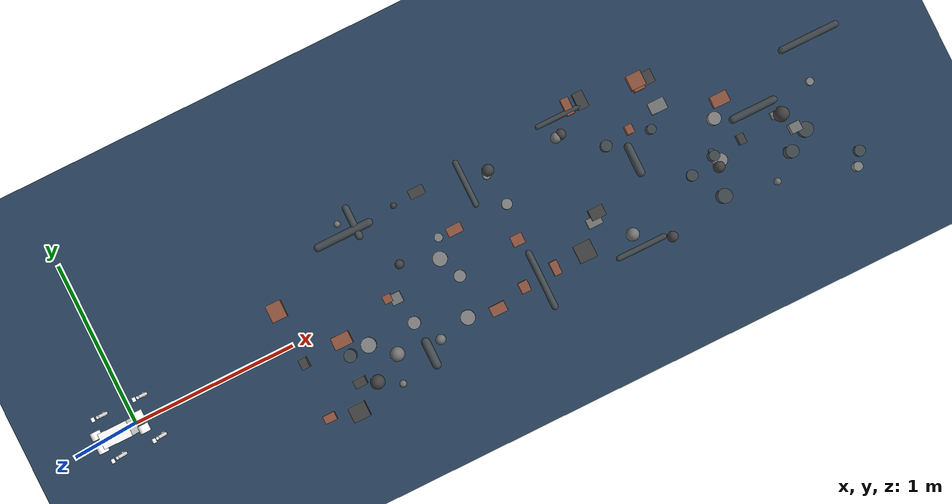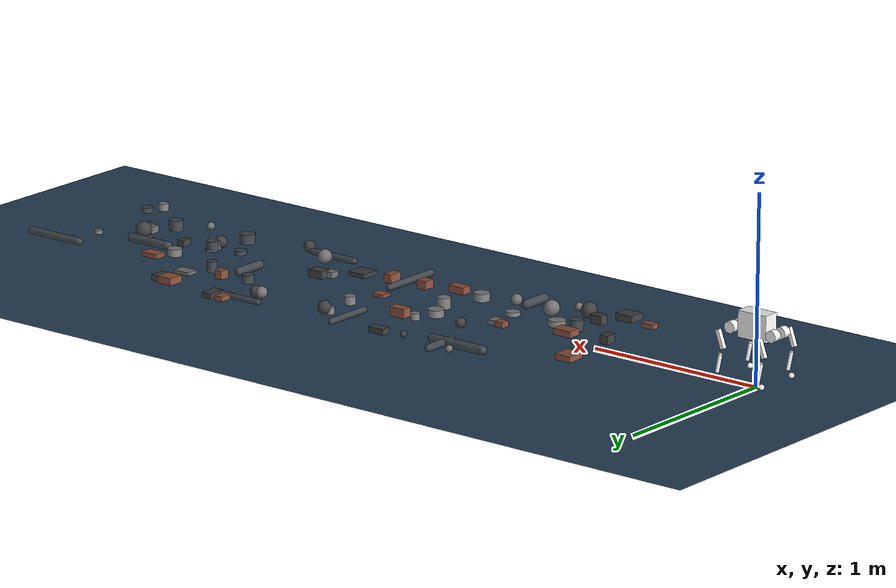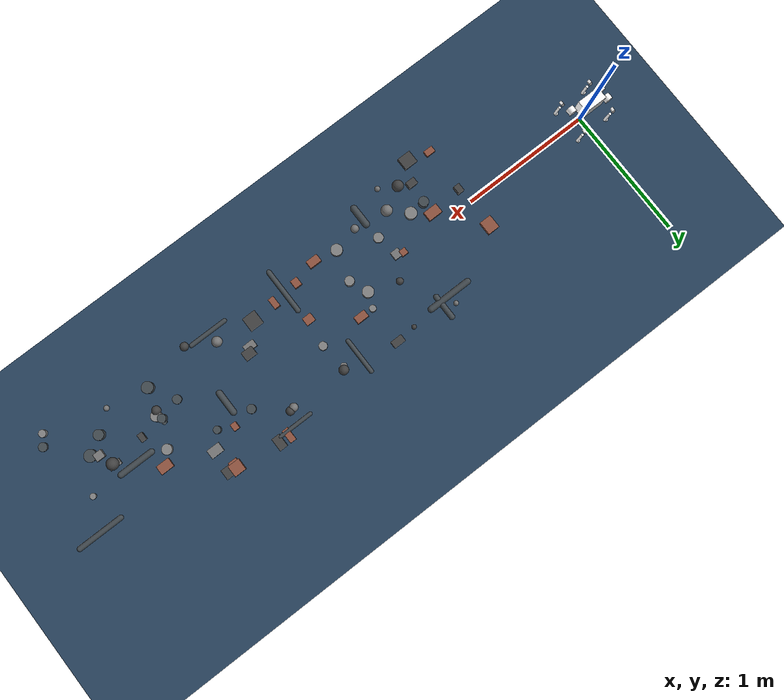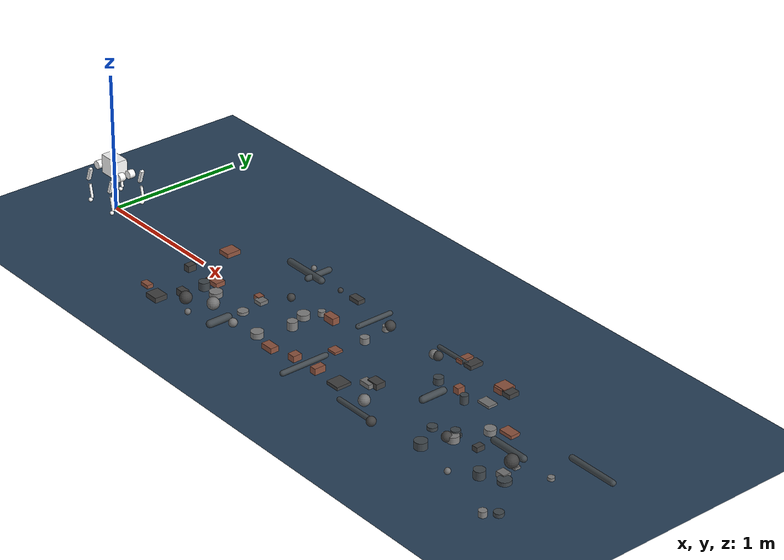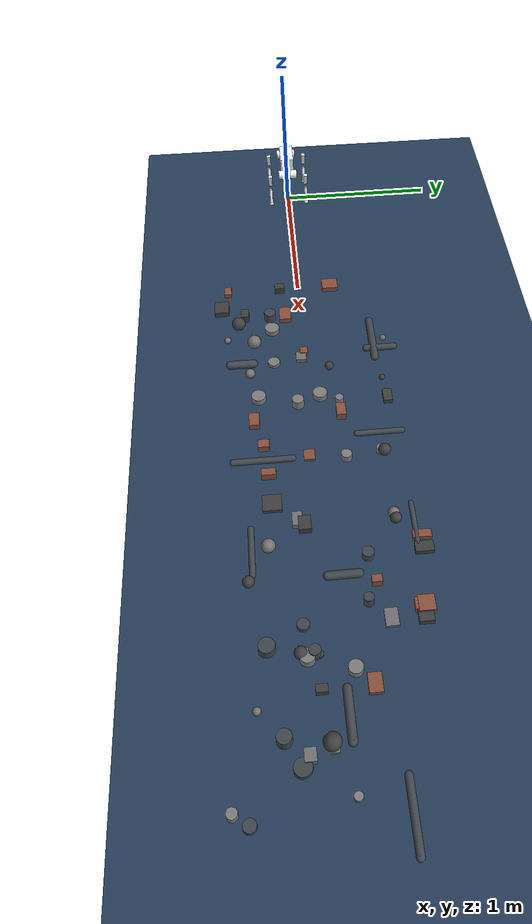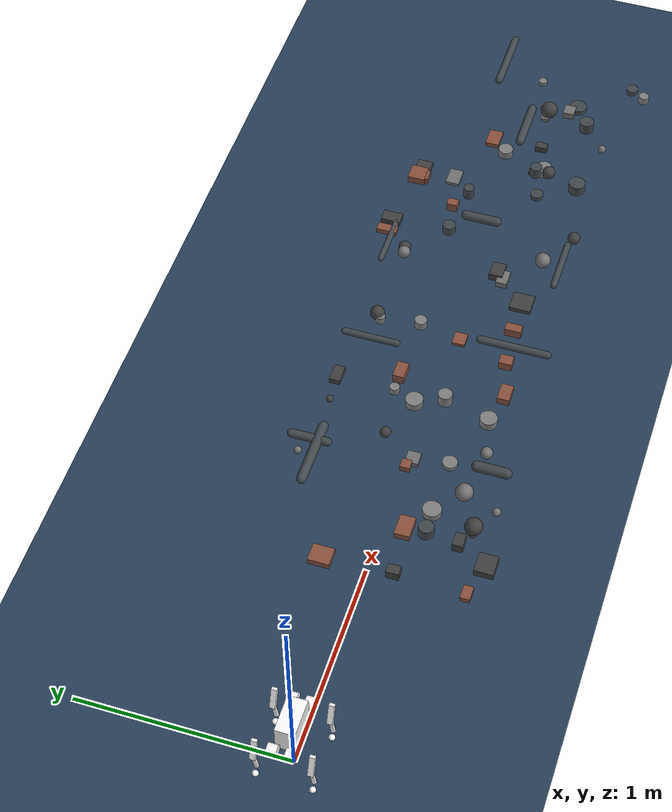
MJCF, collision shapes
<mujoco model="htdw_4438 scene debris mixed">
  <include file="htdw_4438.xml"/>

  <statistic center="0 0 0.1" extent="0.8"/>

  <visual>
    <headlight diffuse="0.6 0.6 0.6" ambient="0.3 0.3 0.3" specular="0 0 0"/>
    <rgba haze="0.15 0.25 0.35 1"/>
  </visual>

  <asset>
    <texture type="skybox" builtin="gradient" rgb1="0.3 0.5 0.7" rgb2="0 0 0" width="512" height="3072"/>
    <texture type="2d" name="groundplane" builtin="checker" mark="edge" rgb1="0.2 0.3 0.4" rgb2="0.1 0.2 0.3"
      markrgb="0.8 0.8 0.8" width="300" height="300"/>
    <material name="groundplane" texture="groundplane" texuniform="true" texrepeat="5 5" reflectance="0.2"/>

    <material name="debris_stone" rgba="0.45 0.45 0.45 1" reflectance="0.05"/>
    <material name="debris_stone2" rgba="0.25 0.25 0.25 1" reflectance="0.05"/>
    <material name="debris_brick" rgba="0.55 0.32 0.24 1" reflectance="0.05"/>
    <material name="debris_concrete" rgba="0.50 0.50 0.50 1" reflectance="0.03"/>
    <material name="debris_metal" rgba="0.25 0.28 0.30 1" reflectance="0.10"/>
    <material name="debris_wood" rgba="0.45 0.32 0.20 1" reflectance="0.05"/>
  </asset>

  <worldbody>
    <light pos="0 0 1.5" dir="0 0 -1" directional="true"/>
    <geom name="floor" size="0 0 0.05" type="plane" material="groundplane"/>

    <!-- Mixed debris: small bricks + stumps + rocks + a few sideways logs/pipes. -->
    <geom pos="3.478 0.303 0.008" type="box" size="0.050 0.035 0.008" material="debris_stone"/>
    <geom pos="2.738 -0.259 0.011" type="box" size="0.053 0.054 0.011" material="debris_stone2"/>
    <geom pos="1.006 0.216 0.016" type="box" size="0.046 0.052 0.016" material="debris_brick"/>
    <geom pos="1.653 -0.021 0.013" type="box" size="0.033 0.032 0.013" material="debris_stone"/>
    <geom pos="2.860 -0.128 0.016" type="box" size="0.044 0.028 0.016" material="debris_stone"/>
    <geom pos="2.422 -0.029 0.008" type="box" size="0.036 0.032 0.008" material="debris_brick"/>
    <geom pos="1.606 -0.001 0.015" type="box" size="0.025 0.024 0.015" material="debris_brick"/>
    <geom pos="1.267 -0.099 0.017" type="box" size="0.055 0.037 0.017" material="debris_brick"/>
    <geom pos="3.477 0.475 0.016" type="box" size="0.051 0.039 0.016" material="debris_stone2"/>
    <geom pos="2.895 -0.090 0.020" type="box" size="0.044 0.034 0.020" material="debris_stone2"/>
    <geom pos="3.095 0.528 0.014" type="box" size="0.032 0.050 0.014" material="debris_stone2"/>
    <geom pos="1.177 -0.508 0.018" type="box" size="0.052 0.046 0.018" material="debris_stone2"/>
    <geom pos="1.018 -0.121 0.023" type="box" size="0.024 0.031 0.023" material="debris_stone2"/>
    <geom pos="2.544 -0.267 0.023" type="box" size="0.023 0.041 0.023" material="debris_brick"/>
    <geom pos="3.271 0.254 0.023" type="box" size="0.022 0.027 0.023" material="debris_brick"/>
    <geom pos="2.148 -0.333 0.019" type="box" size="0.047 0.030 0.019" material="debris_brick"/>
    <geom pos="3.813 0.179 0.012" type="box" size="0.051 0.035 0.012" material="debris_brick"/>
    <geom pos="4.079 -0.040 0.009" type="box" size="0.045 0.021 0.009" material="debris_stone"/>
    <geom pos="4.126 -0.155 0.018" type="box" size="0.033 0.029 0.018" material="debris_stone"/>
    <geom pos="1.011 -0.465 0.013" type="box" size="0.036 0.023 0.013" material="debris_brick"/>
    <geom pos="3.427 0.463 0.018" type="box" size="0.033 0.036 0.018" material="debris_brick"/>
    <geom pos="2.124 0.183 0.024" type="box" size="0.046 0.028 0.024" material="debris_brick"/>
    <geom pos="3.821 -0.078 0.017" type="box" size="0.021 0.030 0.017" material="debris_stone2"/>
    <geom pos="2.025 0.474 0.015" type="box" size="0.046 0.027 0.015" material="debris_stone2"/>
    <geom pos="1.258 -0.358 0.024" type="box" size="0.036 0.025 0.024" material="debris_stone2"/>
    <geom pos="2.338 -0.286 0.022" type="box" size="0.028 0.032 0.022" material="debris_brick"/>
    <geom pos="3.428 0.487 0.019" type="box" size="0.045 0.044 0.019" material="debris_brick"/>
    <geom pos="3.014 0.528 0.013" type="box" size="0.024 0.051 0.013" material="debris_brick"/>

    <geom pos="1.971 -0.299 0.021" type="cylinder" size="0.043 0.021" material="debris_concrete"/>
    <geom pos="2.427 0.381 0.019" type="cylinder" size="0.024 0.019" material="debris_concrete"/>
    <geom pos="3.111 0.227 0.023" type="cylinder" size="0.033 0.023" material="debris_metal"/>
    <geom pos="3.479 -0.141 0.012" type="cylinder" size="0.033 0.012" material="debris_metal"/>
    <geom pos="3.635 -0.095 0.028" type="cylinder" size="0.031 0.028" material="debris_metal"/>
    <geom pos="2.023 0.184 0.018" type="cylinder" size="0.025 0.018" material="debris_concrete"/>
    <geom pos="4.346 -0.513 0.020" type="cylinder" size="0.027 0.020" material="debris_concrete"/>
    <geom pos="2.035 -0.066 0.030" type="cylinder" size="0.035 0.030" material="debris_concrete"/>
    <geom pos="4.399 -0.438 0.013" type="cylinder" size="0.032 0.013" material="debris_metal"/>
    <geom pos="3.733 0.095 0.020" type="cylinder" size="0.038 0.020" material="debris_concrete"/>
    <geom pos="1.977 0.071 0.020" type="cylinder" size="0.043 0.020" material="debris_concrete"/>
    <geom pos="1.682 -0.192 0.011" type="cylinder" size="0.037 0.011" material="debris_concrete"/>
    <geom pos="3.640 -0.071 0.008" type="cylinder" size="0.019 0.008" material="debris_metal"/>
    <geom pos="3.381 0.199 0.030" type="cylinder" size="0.027 0.030" material="debris_metal"/>
    <geom pos="4.321 0.042 0.010" type="cylinder" size="0.022 0.010" material="debris_concrete"/>
    <geom pos="2.457 0.182 0.022" type="cylinder" size="0.031 0.022" material="debris_concrete"/>
    <geom pos="3.658 -0.133 0.023" type="cylinder" size="0.039 0.023" material="debris_concrete"/>
    <geom pos="3.589 -0.327 0.026" type="cylinder" size="0.043 0.026" material="debris_metal"/>
    <geom pos="4.042 -0.268 0.029" type="cylinder" size="0.038 0.029" material="debris_metal"/>
    <geom pos="1.393 -0.190 0.017" type="cylinder" size="0.045 0.017" material="debris_concrete"/>
    <geom pos="1.275 -0.197 0.029" type="cylinder" size="0.037 0.029" material="debris_metal"/>
    <geom pos="4.176 -0.192 0.014" type="cylinder" size="0.045 0.014" material="debris_metal"/>

    <geom pos="1.755 0.146 0.027" type="sphere" size="0.027" material="debris_stone2"/>
    <geom pos="1.324 -0.404 0.019" type="sphere" size="0.019" material="debris_stone2"/>
    <geom pos="1.472 -0.475 0.021" type="sphere" size="0.021" material="debris_stone"/>
    <geom pos="1.537 0.509 0.019" type="sphere" size="0.019" material="debris_stone"/>
    <geom pos="2.444 0.402 0.036" type="sphere" size="0.036" material="debris_stone2"/>
    <geom pos="1.873 0.461 0.018" type="sphere" size="0.018" material="debris_stone2"/>
    <geom pos="3.899 -0.388 0.021" type="sphere" size="0.021" material="debris_stone"/>
    <geom pos="1.349 -0.400 0.043" type="sphere" size="0.043" material="debris_stone2"/>
    <geom pos="3.022 -0.291 0.039" type="sphere" size="0.039" material="debris_stone"/>
    <geom pos="2.874 0.396 0.032" type="sphere" size="0.032" material="debris_stone"/>
    <geom pos="1.777 -0.343 0.030" type="sphere" size="0.030" material="debris_stone"/>
    <geom pos="4.082 -0.051 0.045" type="sphere" size="0.045" material="debris_stone2"/>
    <geom pos="1.520 -0.307 0.043" type="sphere" size="0.043" material="debris_stone"/>
    <geom pos="3.635 -0.164 0.034" type="sphere" size="0.034" material="debris_stone2"/>
    <geom pos="3.222 -0.403 0.032" type="sphere" size="0.032" material="debris_stone2"/>
    <geom pos="2.907 0.402 0.032" type="sphere" size="0.032" material="debris_stone2"/>

    <geom pos="3.222 0.086 0.024" quat="0.707107 0.707107 0 0" type="capsule" size="0.024 0.082" material="debris_metal"/>
    <geom pos="2.941 0.499 0.015" quat="0.707107 0 0.707107 0" type="capsule" size="0.015 0.131" material="debris_metal"/>
    <geom pos="2.298 0.391 0.017" quat="0.707107 0.707107 0 0" type="capsule" size="0.017 0.133" material="debris_metal"/>
    <geom pos="2.444 -0.295 0.019" quat="0.707107 0.707107 0 0" type="capsule" size="0.019 0.170" material="debris_metal"/>
    <geom pos="1.693 -0.391 0.026" quat="0.707107 0.707107 0 0" type="capsule" size="0.026 0.072" material="debris_metal"/>
    <geom pos="4.423 0.273 0.020" quat="0.707107 0 0.707107 0" type="capsule" size="0.020 0.170" material="debris_metal"/>
    <geom pos="3.956 0.042 0.023" quat="0.707107 0 0.707107 0" type="capsule" size="0.023 0.128" material="debris_metal"/>
    <geom pos="1.542 0.437 0.024" quat="0.707107 0 0.707107 0" type="capsule" size="0.024 0.161" material="debris_metal"/>
    <geom pos="1.621 0.479 0.021" quat="0.707107 0.707107 0 0" type="capsule" size="0.021 0.089" material="debris_metal"/>
    <geom pos="3.037 -0.381 0.017" quat="0.707107 0 0.707107 0" type="capsule" size="0.017 0.142" material="debris_metal"/>
  </worldbody>
</mujoco>

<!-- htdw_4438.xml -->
<mujoco model="htdw_4438">
    <compiler angle="radian" meshdir="../meshes" />
    <size njmax="500" nconmax="100" />

    <asset>
        <mesh name="base_link_simple" file="base_link_simple.STL" />
        <mesh name="FL_hip" file="FL_hip.STL" />
        <mesh name="FL_thigh" file="FL_thigh.STL" />
        <mesh name="FL_calf" file="FL_calf.STL" />
        <mesh name="FL_foot" file="FL_foot.STL" />
        <mesh name="FR_hip" file="FR_hip.STL" />
        <mesh name="FR_thigh" file="FR_thigh.STL" />
        <mesh name="FR_calf" file="FR_calf.STL" />
        <mesh name="FR_foot" file="FR_foot.STL" />
        <mesh name="RL_hip" file="RL_hip.STL" />
        <mesh name="RL_thigh" file="RL_thigh.STL" />
        <mesh name="RL_calf" file="RL_calf.STL" />
        <mesh name="RL_foot" file="RL_foot.STL" />
        <mesh name="RR_hip" file="RR_hip.STL" />
        <mesh name="RR_thigh" file="RR_thigh.STL" />
        <mesh name="RR_calf" file="RR_calf.STL" />
        <mesh name="RR_foot" file="RR_foot.STL" />
    </asset>

    <!-- 统一设置阻尼、摩擦力、碰撞解算参数 -->
    <default>
        <!-- IsaacGym/LeggedGym cfg.asset.armature = 0.005; 这里对齐以提升数值稳定性 -->
	        <!-- URDF 未显式设置关节被动阻尼；此处设为 0 以对齐 IsaacGym（被动阻尼主要由 PD 的 Kd 提供） -->
	        <joint limited="true" damping="0.0" frictionloss="0.0" armature="0.005"/>
        <!-- 原 solref=0.005 过硬，容易在接触+高频PD下抖动；改为更温和的接触时间常数 -->
        <geom contype="1" conaffinity="1" friction="0.8 0.05 0.05" solref="0.02 1"/>
    </default>

    <worldbody>
        <!-- Robot Base (Root Body) from Snippet -->
        <body name="robot" pos="0 0 0.3" quat="1 0 0 0">
            <joint name="float_base" type="free" limited="false"/>
	        <!-- 与 resources/robots/htdw_4438/urdf/htdw_4438.urdf 的 base_link 惯性对齐（避免 sim2sim gap） -->
	        <inertial pos="-0.00139370 0.00012462 0.01353999" quat="0.05699976 0.72222690 0.06363175 0.68636020" mass="2.68214792" diaginertia="0.01217432 0.01195068 0.00675497"/>
            <site name="imu" pos="-0.02557 0 0.04232" />

            <!-- Adding Visual Geoms from Original File to the Root Body -->
            <geom type="mesh" contype="0" conaffinity="0" group="1" rgba="1 1 1 1" mesh="base_link_simple" />
            <geom size="0.085 0.045 0.069" pos="0 0 0.025" type="box" rgba="1 1 1 1" />

            <!-- Front Left Leg -->
            <!-- Joint names changed to Uppercase to match actuators -->
            <body name="fl_hip" pos="0.0909 0.04 0">
                <inertial pos="0.0326958 0.00444394 -9.507e-05" quat="0.465966 0.463585 0.53558 0.530206" mass="0.292358" diaginertia="0.000412728 0.000405494 8.3118e-05" />
                <joint name="FL_hip_joint" pos="0 0 0" axis="1 0 0" limited="true" range="-0.9 0.9" />
                <geom type="mesh" contype="0" conaffinity="0" group="1" rgba="1 1 1 1" mesh="FL_hip" />
                <geom size="0.03 0.0225" pos="0.035 0 0" quat="0.505398 0.499971 0.499971 -0.494602" type="cylinder" rgba="1 1 1 1" />

                <body name="fl_thigh" pos="0.034 0.0254 0">
                    <inertial pos="-0.00137569 0.0379093 -0.0116534" quat="0.884178 0.465761 0.0354147 -0.00650016" mass="0.410408" diaginertia="0.00122804 0.000985868 0.000366426" />
                    <joint name="FL_thigh_joint" pos="0 0 0" axis="0 1 0" limited="true" range="-1.5 3.5" />
                    <geom type="mesh" contype="0" conaffinity="0" group="1" rgba="1 1 1 1" mesh="FL_thigh" />
                    <geom size="0.01 0.0125 0.05" pos="0.004 0.06 -0.045" quat="0.984727 0 0.174108 0" type="box" rgba="1 1 1 1" />

                    <body name="fl_calf" pos="0 0.0604 -0.12">
                        <inertial pos="0.0101367 -0.000182728 -0.0624887" quat="0.710874 -0.0477597 -0.04827 0.700034" mass="0.0469098" diaginertia="0.000213166 0.000209385 5.3017e-06" />
                        <joint name="FL_calf_joint" pos="0 0 0" axis="0 1 0" limited="true" range="-2.5 -1.2" />
                        <geom type="mesh" contype="0" conaffinity="0" group="1" rgba="1 1 1 1" mesh="FL_calf" />
                        <geom size="0.01 0.05" pos="0.013 0 -0.05" quat="0.995004 0 -0.0998334 0" type="cylinder" rgba="1 1 1 1" />

                        <!-- Foot Geoms -->
                        <geom pos="0.00206 6e-05 -0.13694" type="mesh" contype="0" conaffinity="0" group="1" rgba="1 1 1 1" mesh="FL_foot" />
                        <geom size="0.015" pos="0.00456 6e-05 -0.12424" rgba="1 1 1 1" />
                        <!-- Adding a site for possible contact sensing, though not strictly in the sensor snippet -->
                        <site name="FL_foot_site" pos="0.00456 6e-05 -0.12424" size="0.01" rgba="0 0 1 0.5"/>
                    </body>
                </body>
            </body>

            <!-- Front Right Leg -->
            <body name="fr_hip" pos="0.0909 -0.04 0">
                <inertial pos="0.0326958 -0.00444394 9.507e-05" quat="0.53558 0.530206 0.465966 0.463585" mass="0.292358" diaginertia="0.000412728 0.000405494 8.3118e-05" />
                <joint name="FR_hip_joint" pos="0 0 0" axis="1 0 0" limited="true" range="-0.9 0.9" />
                <geom type="mesh" contype="0" conaffinity="0" group="1" rgba="1 1 1 1" mesh="FR_hip" />
                <geom size="0.03 0.0225" pos="0.035 0 0" quat="0.505398 0.499971 0.499971 -0.494602" type="cylinder" rgba="1 1 1 1" />

                <body name="fr_thigh" pos="0.034 -0.0254 0">
                    <inertial pos="-0.00130371 -0.0379128 -0.0115569" quat="0.466339 0.884003 0.00461373 -0.0323373" mass="0.410408" diaginertia="0.0012278 0.000984249 0.000367077" />
                    <joint name="FR_thigh_joint" pos="0 0 0" axis="0 1 0" limited="true" range="-1.5 3.5" />
                    <geom type="mesh" contype="0" conaffinity="0" group="1" rgba="1 1 1 1" mesh="FR_thigh" />
                    <geom size="0.01 0.0125 0.05" pos="0.004 -0.06 -0.045" quat="0.984727 0 0.174108 0" type="box" rgba="1 1 1 1" />

                    <body name="fr_calf" pos="0 -0.0604 -0.12">
                        <inertial pos="0.0101597 1.52233e-05 -0.0626033" quat="0.698922 -0.0488767 -0.0472409 0.711961" mass="0.0469098" diaginertia="0.000213525 0.000209727 5.30063e-06" />
                        <joint name="FR_calf_joint" pos="0 0 0" axis="0 1 0" limited="true" range="-2.5 -1.2" />
                        <geom type="mesh" contype="0" conaffinity="0" group="1" rgba="1 1 1 1" mesh="FR_calf" />
                        <geom size="0.01 0.05" pos="0.013 0 -0.05" quat="0.995004 0 -0.0998334 0" type="cylinder" rgba="1 1 1 1" />

                        <geom pos="0.00206 6e-05 -0.13694" type="mesh" contype="0" conaffinity="0" group="1" rgba="1 1 1 1" mesh="FR_foot" />
                        <geom size="0.015" pos="0.00456 6e-05 -0.12424" rgba="1 1 1 1" />
                        <site name="FR_foot_site" pos="0.00456 6e-05 -0.12424" size="0.01" rgba="0 0 1 0.5"/>
                    </body>
                </body>
            </body>

            <!-- Rear Left Leg -->
            <body name="rl_hip" pos="-0.0909 0.04 0">
                <inertial pos="-0.0326958 0.00444394 9.507e-05" quat="0.530206 0.53558 0.463585 0.465966" mass="0.292358" diaginertia="0.000412728 0.000405494 8.3118e-05" />
                <joint name="RL_hip_joint" pos="0 0 0" axis="1 0 0" limited="true" range="-0.9 0.9" />
                <geom type="mesh" contype="0" conaffinity="0" group="1" rgba="1 1 1 1" mesh="RL_hip" />
                <geom size="0.03 0.0225" pos="-0.035 0 0" quat="0.505398 0.499971 0.499971 -0.494602" type="cylinder" rgba="1 1 1 1" />

                <body name="rl_thigh" pos="-0.034 0.0254 0">
                    <inertial pos="-0.00137569 0.0379093 -0.0116534" quat="0.884178 0.465761 0.0354147 -0.00650016" mass="0.410408" diaginertia="0.00122804 0.000985868 0.000366426" />
                    <joint name="RL_thigh_joint" pos="0 0 0" axis="0 1 0" limited="true" range="-1.5 3.5" />
                    <geom type="mesh" contype="0" conaffinity="0" group="1" rgba="1 1 1 1" mesh="RL_thigh" />
                    <geom size="0.01 0.0125 0.05" pos="0.004 0.06 -0.045" quat="0.984727 0 0.174108 0" type="box" rgba="1 1 1 1" />

                    <body name="rl_calf" pos="0 0.0604 -0.12">
                        <inertial pos="0.0095589 -0.000182728 -0.0624887" quat="0.709338 -0.0452838 -0.0455386 0.701937" mass="0.0469098" diaginertia="0.000213491 0.000208973 6.03985e-06" />
                        <joint name="RL_calf_joint" pos="0 0 0" axis="0 1 0" limited="true" range="-2.5 -1.2" />
                        <geom type="mesh" contype="0" conaffinity="0" group="1" rgba="1 1 1 1" mesh="RL_calf" />
                        <geom size="0.01 0.05" pos="0.013 0 -0.05" quat="0.995004 0 -0.0998334 0" type="cylinder" rgba="1 1 1 1" />

                        <geom pos="-0.00206 6e-05 -0.13694" type="mesh" contype="0" conaffinity="0" group="1" rgba="1 1 1 1" mesh="RL_foot" />
                        <geom size="0.015" pos="0.00044 6e-05 -0.12424" rgba="1 1 1 1" />
                        <site name="RL_foot_site" pos="0.00044 6e-05 -0.12424" size="0.01" rgba="0 0 1 0.5"/>
                    </body>
                </body>
            </body>

            <!-- Rear Right Leg -->
            <body name="rr_hip" pos="-0.0909 -0.04 0">
                <inertial pos="-0.0326958 -0.00444394 -9.507e-05" quat="0.463585 0.465966 0.530206 0.53558" mass="0.292358" diaginertia="0.000412728 0.000405494 8.3118e-05" />
                <joint name="RR_hip_joint" pos="0 0 0" axis="1 0 0" limited="true" range="-0.9 0.9" />
                <geom type="mesh" contype="0" conaffinity="0" group="1" rgba="1 1 1 1" mesh="RR_hip" />
                <geom size="0.03 0.0225" pos="-0.035 0 0" quat="0.505398 0.499971 0.499971 -0.494602" type="cylinder" rgba="1 1 1 1" />

                <body name="rr_thigh" pos="-0.034 -0.0254 0">
                    <inertial pos="-0.00130371 -0.0379128 -0.0115569" quat="0.466339 0.884003 0.00461373 -0.0323373" mass="0.410408" diaginertia="0.0012278 0.000984249 0.000367077" />
                    <joint name="RR_thigh_joint" pos="0 0 0" axis="0 1 0" limited="true" range="-1.5 3.5" />
                    <geom type="mesh" contype="0" conaffinity="0" group="1" rgba="1 1 1 1" mesh="RR_thigh" />
                    <geom size="0.01 0.0125 0.05" pos="0.004 -0.06 -0.045" quat="0.984727 0 0.174108 0" type="box" rgba="1 1 1 1" />

                    <body name="rr_calf" pos="0 -0.0604 -0.12">
                        <inertial pos="0.00958187 1.52233e-05 -0.0626033" quat="0.698998 -0.0462627 -0.044667 0.712227" mass="0.0469098" diaginertia="0.000213852 0.000209314 6.03965e-06" />
                        <joint name="RR_calf_joint" pos="0 0 0" axis="0 1 0" limited="true" range="-2.5 -1.2" />
                        <geom type="mesh" contype="0" conaffinity="0" group="1" rgba="1 1 1 1" mesh="RR_calf" />
                        <geom size="0.01 0.05" pos="0.013 0 -0.05" quat="0.995004 0 -0.0998334 0" type="cylinder" rgba="1 1 1 1" />

                        <geom pos="-0.00206 6e-05 -0.13694" type="mesh" contype="0" conaffinity="0" group="1" rgba="1 1 1 1" mesh="RR_foot" />
                        <geom size="0.015" pos="0.00044 6e-05 -0.12424" rgba="1 1 1 1" />
                        <site name="RR_foot_site" pos="0.00044 6e-05 -0.12424" size="0.01" rgba="0 0 1 0.5"/>
                    </body>
                </body>
            </body>
        </body>
    </worldbody>

    <!-- Actuator Section from Snippet -->
    <actuator>
        <motor name="FL_hip_joint" joint="FL_hip_joint" gear="1" ctrllimited="true" ctrlrange="-10 10"/>
        <motor name="FL_thigh_joint" joint="FL_thigh_joint" gear="1" ctrllimited="true" ctrlrange="-10 10"/>
        <motor name="FL_calf_joint" joint="FL_calf_joint" gear="1" ctrllimited="true" ctrlrange="-10 10"/>

        <motor name="FR_hip_joint" joint="FR_hip_joint" gear="1" ctrllimited="true" ctrlrange="-10 10"/>
        <motor name="FR_thigh_joint" joint="FR_thigh_joint" gear="1" ctrllimited="true" ctrlrange="-10 10"/>
        <motor name="FR_calf_joint" joint="FR_calf_joint" gear="1" ctrllimited="true" ctrlrange="-10 10"/>

        <motor name="RL_hip_joint" joint="RL_hip_joint" gear="1" ctrllimited="true" ctrlrange="-10 10"/>
        <motor name="RL_thigh_joint" joint="RL_thigh_joint" gear="1" ctrllimited="true" ctrlrange="-10 10"/>
        <motor name="RL_calf_joint" joint="RL_calf_joint" gear="1" ctrllimited="true" ctrlrange="-10 10"/>

        <motor name="RR_hip_joint" joint="RR_hip_joint" gear="1" ctrllimited="true" ctrlrange="-10 10"/>
        <motor name="RR_thigh_joint" joint="RR_thigh_joint" gear="1" ctrllimited="true" ctrlrange="-10 10"/>
        <motor name="RR_calf_joint" joint="RR_calf_joint" gear="1" ctrllimited="true" ctrlrange="-10 10"/>
    </actuator>

    <!-- Sensor Section from Snippet -->
    <sensor>
        <actuatorpos name='FR_hip_joint_p'  actuator='FR_hip_joint' user='13'/>
        <actuatorpos name='FR_thigh_joint_p'  actuator='FR_thigh_joint' user='13'/>
        <actuatorpos name='FR_calf_joint_p'  actuator='FR_calf_joint' user='13'/>
        <actuatorpos name='FL_hip_joint_p'  actuator='FL_hip_joint' user='13'/>
        <actuatorpos name='FL_thigh_joint_p'  actuator='FL_thigh_joint' user='13'/>
        <actuatorpos name='FL_calf_joint_p'  actuator='FL_calf_joint' user='13'/>
        <actuatorpos name='RR_hip_joint_p'  actuator='RR_hip_joint' user='13'/>
        <actuatorpos name='RR_thigh_joint_p'  actuator='RR_thigh_joint' user='13'/>
        <actuatorpos name='RR_calf_joint_p'  actuator='RR_calf_joint' user='13'/>
        <actuatorpos name='RL_hip_joint_p'  actuator='RL_hip_joint' user='13'/>
        <actuatorpos name='RL_thigh_joint_p'  actuator='RL_thigh_joint' user='13'/>
        <actuatorpos name='RL_calf_joint_p'  actuator='RL_calf_joint' user='13'/>

        <actuatorvel name='FR_hip_joint_v'  actuator='FR_hip_joint' user='13'/>
        <actuatorvel name='FR_thigh_joint_v'  actuator='FR_thigh_joint' user='13'/>
        <actuatorvel name='FR_calf_joint_v'  actuator='FR_calf_joint' user='13'/>
        <actuatorvel name='FL_hip_joint_v'  actuator='FL_hip_joint' user='13'/>
        <actuatorvel name='FL_thigh_joint_v'  actuator='FL_thigh_joint' user='13'/>
        <actuatorvel name='FL_calf_joint_v'  actuator='FL_calf_joint' user='13'/>
        <actuatorvel name='RR_hip_joint_v'  actuator='RR_hip_joint' user='13'/>
        <actuatorvel name='RR_thigh_joint_v'  actuator='RR_thigh_joint' user='13'/>
        <actuatorvel name='RR_calf_joint_v'  actuator='RR_calf_joint' user='13'/>
        <actuatorvel name='RL_hip_joint_v'  actuator='RL_hip_joint' user='13'/>
        <actuatorvel name='RL_thigh_joint_v'  actuator='RL_thigh_joint' user='13'/>
        <actuatorvel name='RL_calf_joint_v'  actuator='RL_calf_joint' user='13'/>

        <actuatorfrc name='FR_hip_joint_f'  actuator='FR_hip_joint'  user='13' noise='1e-3'/>
        <actuatorfrc name='FR_thigh_joint_f'  actuator='FR_thigh_joint'  user='13' noise='1e-3'/>
        <actuatorfrc name='FR_calf_joint_f'  actuator='FR_calf_joint'  user='13' noise='1e-3'/>
        <actuatorfrc name='FL_hip_joint_f'  actuator='FL_hip_joint'  user='13' noise='1e-3'/>
        <actuatorfrc name='FL_thigh_joint_f'  actuator='FL_thigh_joint'  user='13' noise='1e-3'/>
        <actuatorfrc name='FL_calf_joint_f'  actuator='FL_calf_joint'  user='13' noise='1e-3'/>
        <actuatorfrc name='RR_hip_joint_f'  actuator='RR_hip_joint'  user='13' noise='1e-3'/>
        <actuatorfrc name='RR_thigh_joint_f'  actuator='RR_thigh_joint'  user='13' noise='1e-3'/>
        <actuatorfrc name='RR_calf_joint_f'  actuator='RR_calf_joint'  user='13' noise='1e-3'/>
        <actuatorfrc name='RL_hip_joint_f'  actuator='RL_hip_joint'  user='13' noise='1e-3'/>
        <actuatorfrc name='RL_thigh_joint_f'  actuator='RL_thigh_joint'  user='13' noise='1e-3'/>
        <actuatorfrc name='RL_calf_joint_f'  actuator='RL_calf_joint'  user='13' noise='1e-3'/>

        <framequat     name='orientation' objtype='site' noise='0.001' objname='imu'/>
        <framepos      name='position' objtype='site' noise='0.001' objname='imu'/>
        <gyro          name='angular-velocity'    site='imu' noise='0.005' cutoff='34.9'/>
        <velocimeter   name='linear-velocity'     site='imu' noise='0.001' cutoff='30'/>
        <accelerometer name='linear-acceleration' site='imu' noise='0.005' cutoff='157'/>
        <magnetometer  name='magnetometer'        site='imu'/>
    </sensor>
</mujoco>
